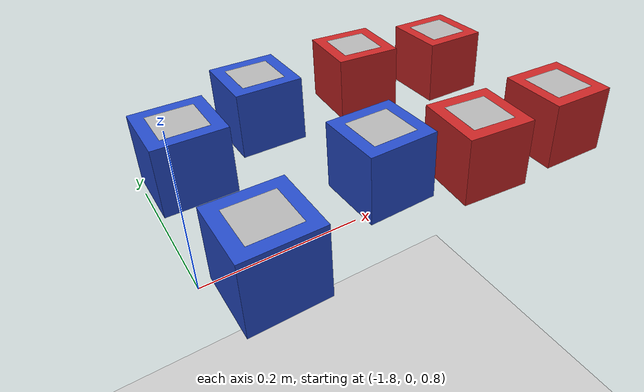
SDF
<sdf version="1.6">
 <world name="default">
  <plugin name="ros_link_attacher_plugin" filename="libgazebo_ros_link_attacher.so"/>
  <light name="sun" type="directional">
   <pose>0 0 10 0 -0 0</pose>
   <diffuse>0.8 0.8 0.8 1</diffuse>
   <specular>0.1 0.1 0.1 1</specular>
   <attenuation>
    <range>1000</range>
    <constant>0.9</constant>
    <linear>0.01</linear>
    <quadratic>0.001</quadratic>
   </attenuation>
   <direction>-0.5 0.5 -1</direction>
  </light>
  <model name="ground_plane">
   <static>1</static>
   <link name="link">
    <collision name="collision">
     <geometry><plane><normal>0 0 1</normal><size>100 100</size></plane></geometry>
     <surface><friction><ode><mu>100</mu><mu2>50</mu2></ode></friction></surface>
    </collision>
    <visual name="visual">
     <cast_shadows>0</cast_shadows>
     <geometry><plane><normal>0 0 1</normal><size>100 100</size></plane></geometry>
     <material>
      <script><uri>file://media/materials/scripts/gazebo.material</uri><name>Gazebo/Grey</name></script>
     </material>
    </visual>
   </link>
  </model>
  <gravity>0 0 -9.8</gravity>
  <magnetic_field>6e-06 2.3e-05 -4.2e-05</magnetic_field>
  <atmosphere type="adiabatic"/>
  <physics name="default_physics" default="0" type="ode">
   <max_step_size>0.001</max_step_size>
   <real_time_factor>1</real_time_factor>
   <real_time_update_rate>1000</real_time_update_rate>
  </physics>
  <scene><ambient>0.4 0.4 0.4 1</ambient><background>0.7 0.7 0.7 1</background><shadows>1</shadows></scene>
  <spherical_coordinates>
   <surface_model>EARTH_WGS84</surface_model>
   <latitude_deg>0</latitude_deg>
   <longitude_deg>0</longitude_deg>
   <elevation>0</elevation>
   <heading_deg>0</heading_deg>
  </spherical_coordinates>
  <model name="cube1">
   <pose>-1.41165 -0.006345 0.846447 0 0 -0.0859</pose>
   <link name="cube1_link">
    <inertial>
     <mass>2</mass>
     <inertia>
      <ixx>0.0166667</ixx>
      <ixy>0</ixy>
      <ixz>0</ixz>
      <iyy>0.0166667</iyy>
      <iyz>0</iyz>
      <izz>0.0166667</izz>
     </inertia>
    </inertial>
    <collision name="collision"><geometry><box><size>0.1 0.1 0.1</size></box></geometry></collision>
    <visual name="visual">
     <geometry><box><size>0.1 0.1 0.1</size></box></geometry>
     <material>
      <script><name>Gazebo/Red</name><uri>file://media/materials/scripts/gazebo.material</uri></script>
     </material>
    </visual>
   </link>
   <link name="tag1">
    <pose>0 0 0.05 0 -0 0</pose>
    <collision name="collision"><geometry><box><size>0.065 0.065 0.0001</size></box></geometry></collision>
    <visual name="visual">
     <cast_shadows>0</cast_shadows>
     <geometry><box><size>0.065 0.065 0.0001</size></box></geometry>
     <material>
      <script>
       <uri>model://artag/materials/scripts</uri>
       <uri>model://artag/materials/textures</uri>
       <name>material/artag0</name>
      </script>
     </material>
    </visual>
    <inertial>
     <inertia><ixx>1</ixx><ixy>0</ixy><ixz>0</ixz><iyy>1</iyy><iyz>0</iyz><izz>1</izz></inertia>
     <mass>1</mass>
    </inertial>
   </link>
   <joint name="cube1_tag1" type="fixed"><parent>cube1_link</parent><child>tag1</child></joint>
  </model>
  <model name="cube2">
   <pose>-1.27953 0.244613 0.846447 0 -0 0.006225</pose>
   <link name="cube2_link">
    <inertial>
     <mass>2</mass>
     <inertia>
      <ixx>0.0166667</ixx>
      <ixy>0</ixy>
      <ixz>0</ixz>
      <iyy>0.0166667</iyy>
      <iyz>0</iyz>
      <izz>0.0166667</izz>
     </inertia>
    </inertial>
    <collision name="collision"><geometry><box><size>0.1 0.1 0.1</size></box></geometry></collision>
    <visual name="visual">
     <geometry><box><size>0.1 0.1 0.1</size></box></geometry>
     <material>
      <script><name>Gazebo/Red</name><uri>file://media/materials/scripts/gazebo.material</uri></script>
     </material>
    </visual>
   </link>
   <link name="tag2">
    <pose>0 0 0.05 0 -0 0</pose>
    <collision name="collision"><geometry><box><size>0.065 0.065 0.0001</size></box></geometry></collision>
    <visual name="visual">
     <cast_shadows>0</cast_shadows>
     <geometry><box><size>0.065 0.065 0.0001</size></box></geometry>
     <material>
      <script>
       <uri>model://artag/materials/scripts</uri>
       <uri>model://artag/materials/textures</uri>
       <name>material/artag1</name>
      </script>
     </material>
    </visual>
    <inertial>
     <inertia><ixx>1</ixx><ixy>0</ixy><ixz>0</ixz><iyy>1</iyy><iyz>0</iyz><izz>1</izz></inertia>
     <mass>1</mass>
    </inertial>
   </link>
   <joint name="cube2_tag2" type="fixed"><parent>cube2_link</parent><child>tag2</child></joint>
  </model>
  <model name="cube3">
   <pose>-1.42971 0.271103 0.846447 0 0 -0.061769</pose>
   <link name="cube3_link">
    <inertial>
     <mass>2</mass>
     <inertia>
      <ixx>0.0166667</ixx>
      <ixy>0</ixy>
      <ixz>0</ixz>
      <iyy>0.0166667</iyy>
      <iyz>0</iyz>
      <izz>0.0166667</izz>
     </inertia>
    </inertial>
    <collision name="collision"><geometry><box><size>0.1 0.1 0.1</size></box></geometry></collision>
    <visual name="visual">
     <geometry><box><size>0.1 0.1 0.1</size></box></geometry>
     <material>
      <script><name>Gazebo/Red</name><uri>file://media/materials/scripts/gazebo.material</uri></script>
     </material>
    </visual>
   </link>
   <link name="tag3">
    <pose>0 0 0.05 0 -0 0</pose>
    <collision name="collision"><geometry><box><size>0.065 0.065 0.0001</size></box></geometry></collision>
    <visual name="visual">
     <cast_shadows>0</cast_shadows>
     <geometry><box><size>0.065 0.065 0.0001</size></box></geometry>
     <material>
      <script>
       <uri>model://artag/materials/scripts</uri>
       <uri>model://artag/materials/textures</uri>
       <name>material/artag2</name>
      </script>
     </material>
    </visual>
    <inertial>
     <inertia><ixx>1</ixx><ixy>0</ixy><ixz>0</ixz><iyy>1</iyy><iyz>0</iyz><izz>1</izz></inertia>
     <mass>1</mass>
    </inertial>
   </link>
   <joint name="cube3_tag3" type="fixed"><parent>cube3_link</parent><child>tag3</child></joint>
  </model>
  <model name="cube4">
   <pose>-1.26224 -0.005908 0.846448 0 0 -0.035242</pose>
   <link name="cube4_link">
    <inertial>
     <mass>2</mass>
     <inertia>
      <ixx>0.0166667</ixx>
      <ixy>0</ixy>
      <ixz>0</ixz>
      <iyy>0.0166667</iyy>
      <iyz>0</iyz>
      <izz>0.0166667</izz>
     </inertia>
    </inertial>
    <collision name="collision"><geometry><box><size>0.1 0.1 0.1</size></box></geometry></collision>
    <visual name="visual">
     <geometry><box><size>0.1 0.1 0.1</size></box></geometry>
     <material>
      <script><name>Gazebo/Red</name><uri>file://media/materials/scripts/gazebo.material</uri></script>
     </material>
    </visual>
   </link>
   <link name="tag4">
    <pose>0 0 0.05 0 -0 0</pose>
    <collision name="collision"><geometry><box><size>0.065 0.065 0.0001</size></box></geometry></collision>
    <visual name="visual">
     <cast_shadows>0</cast_shadows>
     <geometry><box><size>0.065 0.065 0.0001</size></box></geometry>
     <material>
      <script>
       <uri>model://artag/materials/scripts</uri>
       <uri>model://artag/materials/textures</uri>
       <name>material/artag3</name>
      </script>
     </material>
    </visual>
    <inertial>
     <inertia><ixx>1</ixx><ixy>0</ixy><ixz>0</ixz><iyy>1</iyy><iyz>0</iyz><izz>1</izz></inertia>
     <mass>1</mass>
    </inertial>
   </link>
   <joint name="cube4_tag4" type="fixed"><parent>cube4_link</parent><child>tag4</child></joint>
  </model>
  <model name="blue_cube_1">
   <pose>-1.74374 0.191358 0.846457 0 -0 0.002953</pose>
   <link name="blue_cube_1_link">
    <inertial>
     <mass>2</mass>
     <inertia>
      <ixx>0.0166667</ixx>
      <ixy>0</ixy>
      <ixz>0</ixz>
      <iyy>0.0166667</iyy>
      <iyz>0</iyz>
      <izz>0.0166667</izz>
     </inertia>
    </inertial>
    <collision name="collision"><geometry><box><size>0.1 0.1 0.1</size></box></geometry></collision>
    <visual name="visual">
     <geometry><box><size>0.1 0.1 0.1</size></box></geometry>
     <material>
      <script><name>Gazebo/Blue</name><uri>file://media/materials/scripts/gazebo.material</uri></script>
     </material>
    </visual>
   </link>
   <link name="tag10">
    <pose>0 0 0.05 0 -0 0</pose>
    <collision name="collision"><geometry><box><size>0.065 0.065 0.0001</size></box></geometry></collision>
    <visual name="visual">
     <cast_shadows>0</cast_shadows>
     <geometry><box><size>0.065 0.065 0.0001</size></box></geometry>
     <material>
      <script>
       <uri>model://artag/materials/scripts</uri>
       <uri>model://artag/materials/textures</uri>
       <name>material/artag9</name>
      </script>
     </material>
    </visual>
    <inertial>
     <inertia><ixx>1</ixx><ixy>0</ixy><ixz>0</ixz><iyy>1</iyy><iyz>0</iyz><izz>1</izz></inertia>
     <mass>1</mass>
    </inertial>
   </link>
   <joint name="blue_cube_1_tag10" type="fixed"><parent>blue_cube_1_link</parent><child>tag10</child></joint>
  </model>
  <model name="blue_cube_2">
   <pose>-1.60702 0.260369 0.846457 0 1e-06 0.006038</pose>
   <link name="blue_cube_2_link">
    <inertial>
     <mass>2</mass>
     <inertia>
      <ixx>0.0166667</ixx>
      <ixy>0</ixy>
      <ixz>0</ixz>
      <iyy>0.0166667</iyy>
      <iyz>0</iyz>
      <izz>0.0166667</izz>
     </inertia>
    </inertial>
    <collision name="collision"><geometry><box><size>0.1 0.1 0.1</size></box></geometry></collision>
    <visual name="visual">
     <geometry><box><size>0.1 0.1 0.1</size></box></geometry>
     <material>
      <script><name>Gazebo/Blue</name><uri>file://media/materials/scripts/gazebo.material</uri></script>
     </material>
    </visual>
   </link>
   <link name="tag11">
    <pose>0 0 0.05 0 -0 0</pose>
    <collision name="collision"><geometry><box><size>0.065 0.065 0.0001</size></box></geometry></collision>
    <visual name="visual">
     <cast_shadows>0</cast_shadows>
     <geometry><box><size>0.065 0.065 0.0001</size></box></geometry>
     <material>
      <script>
       <uri>model://artag/materials/scripts</uri>
       <uri>model://artag/materials/textures</uri>
       <name>material/artag10</name>
      </script>
     </material>
    </visual>
    <inertial>
     <inertia><ixx>1</ixx><ixy>0</ixy><ixz>0</ixz><iyy>1</iyy><iyz>0</iyz><izz>1</izz></inertia>
     <mass>1</mass>
    </inertial>
   </link>
   <joint name="blue_cube_2_tag11" type="fixed"><parent>blue_cube_2_link</parent><child>tag11</child></joint>
  </model>
  <model name="blue_cube_3">
   <pose>-1.73244 -0.037818 0.846457 0 -0 0.001694</pose>
   <link name="blue_cube_3_link">
    <inertial>
     <mass>2</mass>
     <inertia>
      <ixx>0.0166667</ixx>
      <ixy>0</ixy>
      <ixz>0</ixz>
      <iyy>0.0166667</iyy>
      <iyz>0</iyz>
      <izz>0.0166667</izz>
     </inertia>
    </inertial>
    <collision name="collision"><geometry><box><size>0.1 0.1 0.1</size></box></geometry></collision>
    <visual name="visual">
     <geometry><box><size>0.1 0.1 0.1</size></box></geometry>
     <material>
      <script><name>Gazebo/Blue</name><uri>file://media/materials/scripts/gazebo.material</uri></script>
     </material>
    </visual>
   </link>
   <link name="tag12">
    <pose>0 0 0.05 0 -0 0</pose>
    <collision name="collision"><geometry><box><size>0.065 0.065 0.0001</size></box></geometry></collision>
    <visual name="visual">
     <cast_shadows>0</cast_shadows>
     <geometry><box><size>0.065 0.065 0.0001</size></box></geometry>
     <material>
      <script>
       <uri>model://artag/materials/scripts</uri>
       <uri>model://artag/materials/textures</uri>
       <name>material/artag11</name>
      </script>
     </material>
    </visual>
    <inertial>
     <inertia><ixx>1</ixx><ixy>0</ixy><ixz>0</ixz><iyy>1</iyy><iyz>0</iyz><izz>1</izz></inertia>
     <mass>1</mass>
    </inertial>
   </link>
   <joint name="blue_cube_3_tag12" type="fixed"><parent>blue_cube_3_link</parent><child>tag12</child></joint>
  </model>
  <model name="blue_cube_4">
   <pose>-1.53758 0.036103 0.846457 0 1e-06 0.028843</pose>
   <link name="blue_cube_4_link">
    <inertial>
     <mass>2</mass>
     <inertia>
      <ixx>0.0166667</ixx>
      <ixy>0</ixy>
      <ixz>0</ixz>
      <iyy>0.0166667</iyy>
      <iyz>0</iyz>
      <izz>0.0166667</izz>
     </inertia>
    </inertial>
    <collision name="collision"><geometry><box><size>0.1 0.1 0.1</size></box></geometry></collision>
    <visual name="visual">
     <geometry><box><size>0.1 0.1 0.1</size></box></geometry>
     <material>
      <script><name>Gazebo/Blue</name><uri>file://media/materials/scripts/gazebo.material</uri></script>
     </material>
    </visual>
   </link>
   <link name="tag13">
    <pose>0 0 0.05 0 -0 0</pose>
    <collision name="collision"><geometry><box><size>0.065 0.065 0.0001</size></box></geometry></collision>
    <visual name="visual">
     <cast_shadows>0</cast_shadows>
     <geometry><box><size>0.065 0.065 0.0001</size></box></geometry>
     <material>
      <script>
       <uri>model://artag/materials/scripts</uri>
       <uri>model://artag/materials/textures</uri>
       <name>material/artag12</name>
      </script>
     </material>
    </visual>
    <inertial>
     <inertia><ixx>1</ixx><ixy>0</ixy><ixz>0</ixz><iyy>1</iyy><iyz>0</iyz><izz>1</izz></inertia>
     <mass>1</mass>
    </inertial>
   </link>
   <joint name="blue_cube_4_tag13" type="fixed"><parent>blue_cube_4_link</parent><child>tag13</child></joint>
  </model>
  <audio><device>default</device></audio>
 </world>
</sdf>
